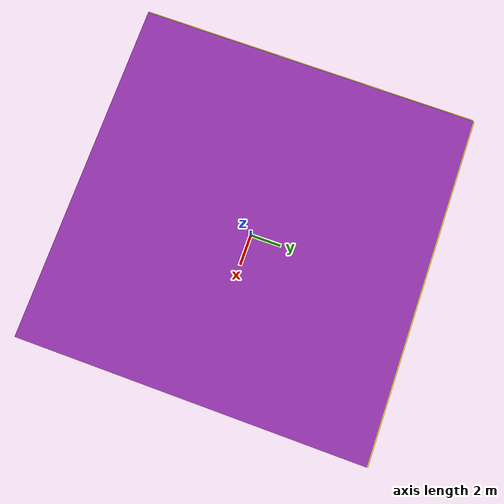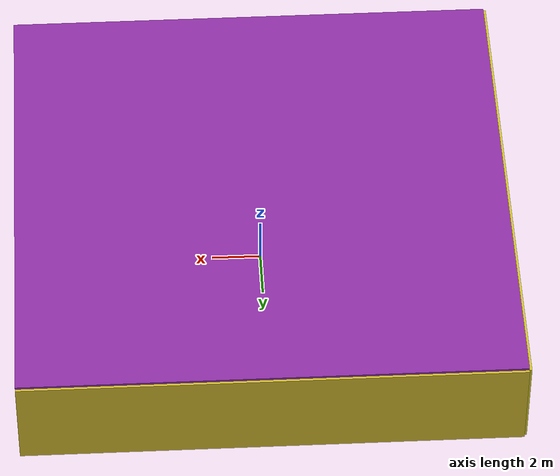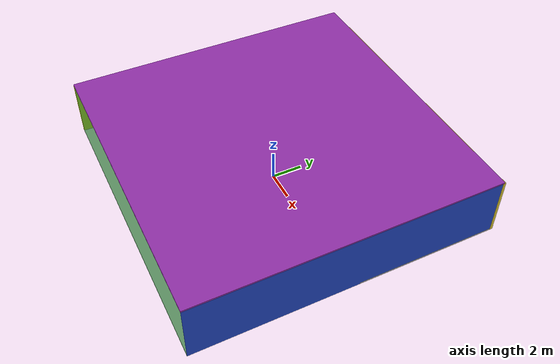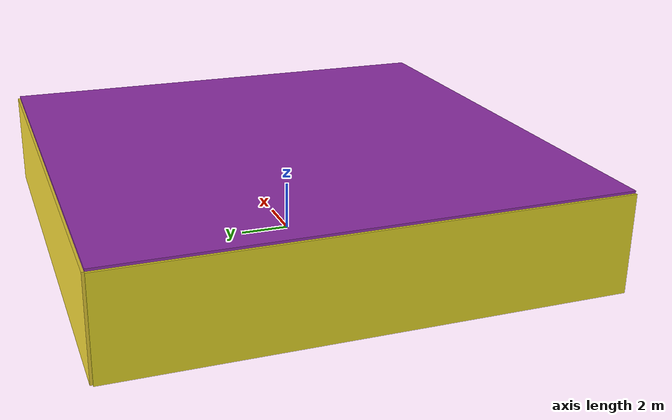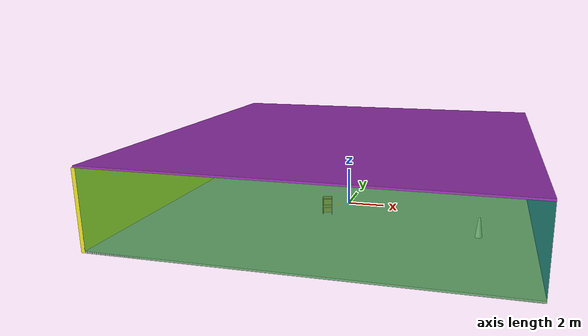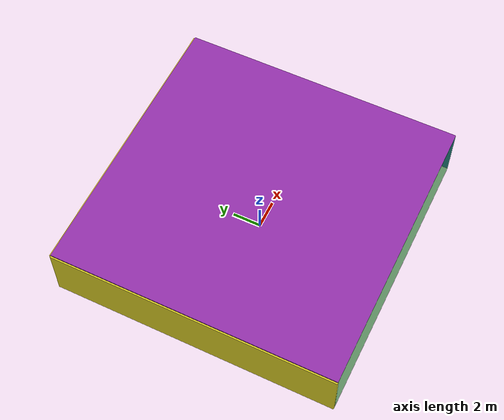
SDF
<sdf version="1.4">
 <world name="default">
  <physics type="ode">
   <max_step_size>0.001</max_step_size>
   <real_time_factor>1</real_time_factor>
   <real_time_update_rate>1000</real_time_update_rate>
   <gravity>0 0 -9.8</gravity>
  </physics>
  <scene><ambient>0.4 0.4 0.4 1</ambient><background>0.7 0.7 0.7 1</background><shadows>1</shadows></scene>
  <model name="Surrounding">
   <static>1</static>
   <link name="Ceiling">
    <collision name="Ceiling_Collision"><geometry><box><size>20 20 0.1</size></box></geometry></collision>
    <visual name="Ceiling_Visual">
     <geometry><box><size>20 20 0.1</size></box></geometry>
     <material>
      <script><uri>file://media/materials/scripts/gazebo.material</uri><name>Gazebo/Purple</name></script>
     </material>
    </visual>
    <pose>0 0 4.05 0 0 0</pose>
   </link>
   <link name="Wall_South">
    <collision name="Wall_South_Collision">
     <geometry><box><size>20 0 4</size></box></geometry>
     <pose>0 0 2 0 -0 0</pose>
    </collision>
    <visual name="Wall_South_Visual">
     <pose>0 0 2 0 -0 0</pose>
     <geometry><box><size>20 0 4</size></box></geometry>
     <material>
      <script><uri>file://media/materials/scripts/gazebo.material</uri><name>Gazebo/GreenTransparent</name></script>
     </material>
    </visual>
    <velocity_decay><linear>0</linear><angular>0</angular></velocity_decay>
    <pose>0 -10 0 0 -0 0</pose>
   </link>
   <link name="Wall_East">
    <collision name="Wall_21_Collision">
     <geometry><box><size>20 0 4</size></box></geometry>
     <pose>0 0 2 0 -0 0</pose>
    </collision>
    <visual name="Wall_21_Visual">
     <pose>0 0 2 0 -0 0</pose>
     <geometry><box><size>20 0 4</size></box></geometry>
     <material>
      <script><uri>file://media/materials/scripts/gazebo.material</uri><name>Gazebo/BlueLaser</name></script>
     </material>
    </visual>
    <velocity_decay><linear>0</linear><angular>0</angular></velocity_decay>
    <pose>10 0 0 0 -0 1.5708</pose>
   </link>
   <link name="Wall_North">
    <collision name="Wall_22_Collision">
     <geometry><box><size>20 0.2 4</size></box></geometry>
     <pose>0 0 2 0 -0 0</pose>
    </collision>
    <visual name="Wall_22_Visual">
     <pose>0 0 2 0 -0 0</pose>
     <geometry><box><size>20 0.2 4</size></box></geometry>
     <material>
      <script><uri>file://media/materials/scripts/gazebo.material</uri><name>Gazebo/ZincYellow</name></script>
     </material>
    </visual>
    <velocity_decay><linear>0</linear><angular>0</angular></velocity_decay>
    <pose>0 10 0 0 -0 0</pose>
   </link>
   <link name="Wall_West">
    <collision name="Wall_23_Collision">
     <geometry><box><size>20 0.2 4</size></box></geometry>
     <pose>0 0 2 0 -0 0</pose>
    </collision>
    <visual name="Wall_23_Visual">
     <pose>0 0 2 0 -0 0</pose>
     <geometry><box><size>20 0.2 4</size></box></geometry>
     <material>
      <script><uri>file://media/materials/scripts/gazebo.material</uri><name>Gazebo/Yellow</name></script>
     </material>
    </visual>
    <velocity_decay><linear>0</linear><angular>0</angular></velocity_decay>
    <pose>-10 0 0 0 0 -1.5708</pose>
   </link>
   <link name="Ground_link">
    <collision name="collision">
     <pose>0 0 .05 0 -0 0</pose>
     <geometry><box><size>20 20 0.1</size></box></geometry>
    </collision>
    <visual name="visual">
     <pose>0 0 .05 0 -0 0</pose>
     <geometry><box><size>20 20 0.1</size></box></geometry>
     <material>
      <script><uri>file://media/materials/scripts/gazebo.material</uri><name>Gazebo/CloudySky</name></script>
     </material>
    </visual>
   </link>
   <static>1</static>
  </model>
  <spherical_coordinates>
   <surface_model>EARTH_WGS84</surface_model>
   <latitude_deg>0</latitude_deg>
   <longitude_deg>0</longitude_deg>
   <elevation>0</elevation>
   <heading_deg>0</heading_deg>
  </spherical_coordinates>
  <light name="lightball_0" type="diffuse">
   <diffuse>0.8 0.8 0.8 1</diffuse>
   <specular>0.2 0.2 0.2 1</specular>
   <attenuation>
    <range>100</range>
    <constant>0.7</constant>
    <linear>0.01</linear>
    <quadratic>0.001</quadratic>
   </attenuation>
   <direction>-0.5 0.1 -0.9</direction>
   <pose>6.01067950993 2.39442391198 3.66510394491 0 0 0</pose>
  </light>
  <light name="lightball_1" type="diffuse">
   <diffuse>0.8 0.8 0.8 1</diffuse>
   <specular>0.2 0.2 0.2 1</specular>
   <attenuation>
    <range>100</range>
    <constant>0.7</constant>
    <linear>0.01</linear>
    <quadratic>0.001</quadratic>
   </attenuation>
   <direction>-0.5 0.1 -0.9</direction>
   <pose>7.96914500135 5.94865882196 1.98083790103 0 0 0</pose>
  </light>
  <light name="lightball_2" type="diffuse">
   <diffuse>0.8 0.8 0.8 1</diffuse>
   <specular>0.2 0.2 0.2 1</specular>
   <attenuation>
    <range>100</range>
    <constant>0.7</constant>
    <linear>0.01</linear>
    <quadratic>0.001</quadratic>
   </attenuation>
   <direction>-0.5 0.1 -0.9</direction>
   <pose>7.9132045288 -7.02707301392 0.962101880763 0 0 0</pose>
  </light>
  <include><uri>model://cabinet</uri><pose>-0.634643352884 -2.40899359678 0 0 0 1.81753326547</pose></include>
  <include><uri>model://cabinet</uri><pose>-2.45055156884 3.61016059047 0 0 0 1.75423805123</pose></include>
  <include><uri>model://cabinet</uri><pose>4.19668346158 7.35446997242 0 0 0 1.3026747798</pose></include>
  <include>
   <uri>model://construction_cone</uri>
   <pose>7.38461538531 -3.98949960101 0 0 0 2.90318614592</pose>
  </include>
 </world>
</sdf>

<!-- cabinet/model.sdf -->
<sdf version="1.5">
  <model name="cabinet">
    <static>true</static>
    <link name="cabinet_bottom_plate">
      <inertial>
        <pose>0 0 -1 0 0 0</pose>
        <inertia>
          <ixx>2.050000</ixx>
          <ixy>0</ixy>
          <ixz>0</ixz>
          <iyy>2.050000</iyy>
          <iyz>0</iyz>
          <izz>2.050000</izz>
        </inertia>
        <mass>25.000000</mass>
      </inertial>
      <collision name="cabinet_bottom_plate_geom">
        <pose>0 0 0.010000 0 0 0</pose>
        <geometry>
          <box>
            <size>0.450000 0.450000 0.020000</size>
          </box>
        </geometry>
      </collision>
      <visual name="cabinet_bottom_plate_geom_visual">
        <pose>0 0 0.010000 0 0 0</pose>
        <geometry>
          <box>
            <size>0.450000 0.450000 0.020000</size>
          </box>
        </geometry>
        <material>
          <script>
            <uri>model://media/materials/scripts/gazebo.material</uri>
            <name>Gazebo/Wood</name>
          </script>
        </material>
      </visual>
      <collision name="cabinet_bottom_plate_geom_cabinet_back_plate">
        <pose>0.235000 0 0.510000 0 0 0</pose>
        <geometry>
          <box>
            <size>0.020000 0.450000 1.020000</size>
          </box>
        </geometry>
      </collision>
      <visual name="cabinet_bottom_plate_geom_cabinet_back_plate_visual">
        <pose>0.235000 0 0.510000 0 0 0</pose>
        <geometry>
          <box>
            <size>0.020000 0.450000 1.020000</size>
          </box>
        </geometry>
        <material>
          <script>
            <uri>model://media/materials/scripts/gazebo.material</uri>
            <name>Gazebo/Wood</name>
          </script>
        </material>
      </visual>
      <collision name="cabinet_bottom_plate_geom_cabinet_left_plate">
        <pose>0 0.235000 0.510000 0 0 0</pose>
        <geometry>
          <box>
            <size>0.450000 0.020000 1.020000</size>
          </box>
        </geometry>
      </collision>
      <visual name="cabinet_bottom_plate_geom_cabinet_left_plate_visual">
        <pose>0 0.235000 0.510000 0 0 0</pose>
        <geometry>
          <box>
            <size>0.450000 0.020000 1.020000</size>
          </box>
        </geometry>
        <material>
          <script>
            <uri>model://media/materials/scripts/gazebo.material</uri>
            <name>Gazebo/Wood</name>
          </script>
        </material>
      </visual>
      <collision name="cabinet_bottom_plate_geom_cabinet_middle_plate">
        <pose>0 0 0.510000 0 0 0</pose>
        <geometry>
          <box>
            <size>0.450000 0.450000 0.020000</size>
          </box>
        </geometry>
      </collision>
      <visual name="cabinet_bottom_plate_geom_cabinet_middle_plate_visual">
        <pose>0 0 0.510000 0 0 0</pose>
        <geometry>
          <box>
            <size>0.450000 0.450000 0.020000</size>
          </box>
        </geometry>
        <material>
          <script>
            <uri>model://media/materials/scripts/gazebo.material</uri>
            <name>Gazebo/Wood</name>
          </script>
        </material>
      </visual>
      <collision name="cabinet_bottom_plate_geom_cabinet_right_plate">
        <pose>0 -0.235000 0.510000 0 0 0</pose>
        <geometry>
          <box>
            <size>0.450000 0.020000 1.020000</size>
          </box>
        </geometry>
      </collision>
      <visual name="cabinet_bottom_plate_geom_cabinet_right_plate_visual">
        <pose>0 -0.235000 0.510000 0 0 0</pose>
        <geometry>
          <box>
            <size>0.450000 0.020000 1.020000</size>
          </box>
        </geometry>
        <material>
          <script>
            <uri>model://media/materials/scripts/gazebo.material</uri>
            <name>Gazebo/Wood</name>
          </script>
        </material>
      </visual>
      <collision name="cabinet_bottom_plate_geom_cabinet_top_plate">
        <pose>0 0 1.010000 0 0 0</pose>
        <geometry>
          <box>
            <size>0.450000 0.450000 0.020000</size>
          </box>
        </geometry>
      </collision>
      <visual name="cabinet_bottom_plate_geom_cabinet_top_plate_visual">
        <pose>0 0 1.010000 0 0 0</pose>
        <geometry>
          <box>
            <size>0.450000 0.450000 0.020000</size>
          </box>
        </geometry>
        <material>
          <script>
            <uri>model://media/materials/scripts/gazebo.material</uri>
            <name>Gazebo/Wood</name>
          </script>
        </material>
      </visual>
    </link>
  </model>
</sdf>

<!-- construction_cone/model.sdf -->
<sdf version="1.5">
  <model name="Construction Cone">
    <link name="link">
      <collision name="collision">
        <geometry>
          <mesh>
            <scale>10 10 10</scale>
            <uri>file://isr-testbed/construction_cone/meshes/construction_cone.dae</uri>
          </mesh>
        </geometry>
      </collision>
      <visual name="visual">
        <geometry>
          <mesh>
            <scale>10 10 10</scale>
            <uri>file://isr-testbed/construction_cone/meshes/construction_cone.dae</uri>
          </mesh>
        </geometry>
      </visual>
    </link>
  </model>
</sdf>
